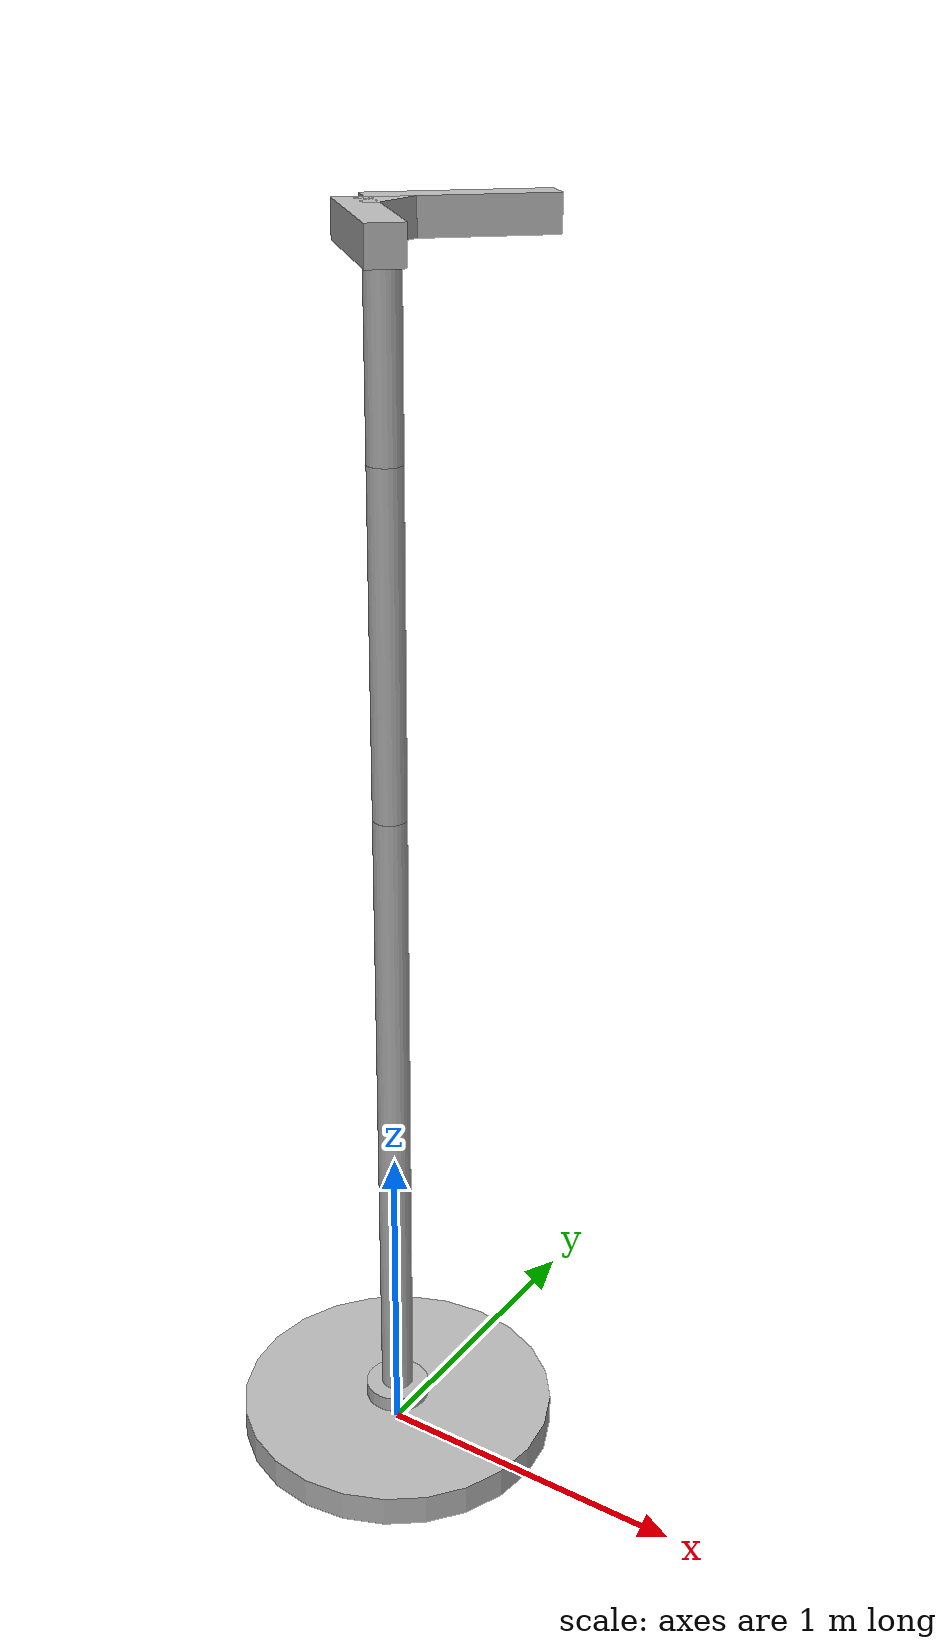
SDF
<?xml version='1.0'?>
<sdf version='1.4'>
    <model name="my_robot">
        <static>false</static>
        <self_collide>1</self_collide>
        <link name='chassis'>
            <pose>0 0 .05 0 0 0</pose>
            <inertial>
                <mass> 72</mass>
            </inertial>
            <collision name='collision'>
                <geometry>
                    <cylinder>
                        <radius>.5</radius>
                        <length>.1</length>
                    </cylinder>
                </geometry>
            </collision>
            <visual name='visual'>
                <geometry>
                    <cylinder>
                        <radius>.5</radius>
                        <length>.1</length>
                    </cylinder>
                </geometry>
            </visual>
        </link>
        <link name='arm1'>
            <pose>0 0 .125 0 0 0</pose>
            <gravity>0</gravity>

            <collision name='collision'>
                <geometry>
                    <cylinder>
                        <radius>.1</radius>
                        <length>.05</length>
                    </cylinder>
                </geometry>
            </collision>

            <visual name='visual'>
                <geometry>
                    <cylinder>
                        <radius>.1</radius>
                        <length>.05</length>
                    </cylinder>
                </geometry>
            </visual>
        </link>
        <link name='arm2'>
            <pose>0 0 1.15 0 0 0</pose>

            <collision name='collision'>
                <geometry>
                    <cylinder>
                        <radius>.05</radius>
                        <length>2.0</length>
                    </cylinder>
                </geometry>
            </collision>

            <visual name='visual'>
                <geometry>
                    <cylinder>
                        <radius>.05</radius>
                        <length>2.0</length>
                    </cylinder>
                </geometry>
            </visual>
        </link>
        <link name='arm3'>
            <pose>0 0 2.65 0 0 0</pose>

            <collision name='collision'>
                <geometry>
                    <cylinder>
                        <radius>.05</radius>
                        <length>1.0</length>
                    </cylinder>
                </geometry>
            </collision>

            <visual name='visual'>
                <geometry>
                    <cylinder>
                        <radius>.05</radius>
                        <length>1.0</length>
                    </cylinder>
                </geometry>
            </visual>
        </link>
        <link name='arm4'>
            <pose>0 0 3.4 0 0 0</pose>

            <collision name='collision'>
                <geometry>
                    <cylinder>
                        <radius>.05</radius>
                        <length>0.5</length>
                    </cylinder>
                </geometry>
            </collision>

            <visual name='visual'>
                <geometry>
                    <cylinder>
                        <radius>.05</radius>
                        <length>0.5</length>
                    </cylinder>
                </geometry>
            </visual>
        </link>
        <link name='arm5'>
            <pose>0 0 3.675 0 0 0</pose>

            <collision name='collision'>
                <geometry>
                    <cylinder>
                        <radius>.05</radius>
                        <length>0.05</length>
                    </cylinder>
                </geometry>
            </collision>

            <visual name='visual'>
                <geometry>
                    <cylinder>
                        <radius>.05</radius>
                        <length>0.05</length>
                    </cylinder>
                </geometry>
            </visual>
        </link>

        <link name="palm">
            <pose>0.0 0.0 3.75 0 0 0</pose>
            <inertial>
                <inertia>
                    <ixx>0.01</ixx>
                    <ixy>0</ixy>
                    <ixz>0</ixz>
                    <iyy>0.01</iyy>
                    <iyz>0</iyz>
                    <izz>0.01</izz>
                </inertia>
                <mass>0.5</mass>
            </inertial>
            <collision name="collision">
                <geometry>
                    <box>
                        <size>0.1 0.2 0.1</size>
                    </box>
                </geometry>
            </collision>
            <visual name="visual">
                <geometry>
                    <box>
                        <size>0.1 0.2 0.1</size>
                    </box>
                </geometry>
                <material>
                    <script>Gazebo/Red</script>
                </material>
            </visual>
        </link>
        <link name="left_finger">
            <pose>0.1 0.2 3.75 0 0 -0.78539</pose>
            <inertial>
                <inertia>
                    <ixx>0.01</ixx>
                    <ixy>0</ixy>
                    <ixz>0</ixz>
                    <iyy>0.01</iyy>
                    <iyz>0</iyz>
                    <izz>0.01</izz>
                </inertia>
                <mass>0.1</mass>
            </inertial>
            <collision name="collision">
                <geometry>
                    <box>
                        <size>0.1 0.3 0.1</size>
                    </box>
                </geometry>
            </collision>
            <visual name="visual">
                <geometry>
                    <box>
                        <size>0.1 0.5 0.1</size>
                    </box>
                </geometry>
                <material>
                    <script>Gazebo/Blue</script>
                </material>
            </visual>
        </link>
        <link name="right_finger">
            <pose>0.1 -0.2 3.75 0 0 .78539</pose>
            <inertial>
                <inertia>
                    <ixx>0.01</ixx>
                    <ixy>0</ixy>
                    <ixz>0</ixz>
                    <iyy>0.01</iyy>
                    <iyz>0</iyz>
                    <izz>0.01</izz>
                </inertia>
                <mass>0.1</mass>
            </inertial>
            <collision name="collision">
                <geometry>
                    <box>
                        <size>0.1 0.5 0.1</size>
                    </box>
                </geometry>
            </collision>
            <visual name="visual">
                <geometry>
                    <box>
                        <size>0.1 0.5 0.1</size>
                    </box>
                </geometry>
                <material>
                    <script>Gazebo/Green</script>
                </material>
            </visual>
        </link>
        <!-- joints-->
        <joint type="revolute" name="chasis_arm1_joint">
            <pose>0 0 -0.025 0 0 0</pose>
            <child>arm1</child>
            <parent>chassis</parent>
            <axis>
                <xyz>0 0 1</xyz>
            </axis>
        </joint>
         <joint type="revolute" name="arm1_arm2_joint">
            <pose>0 0 -1 0 0 0</pose>
            <child>arm2</child>
            <parent>arm1</parent>
            <axis>
                <xyz>1 0 0</xyz>
            </axis>
        </joint>
        <joint type="revolute" name="arm2_arm3_joint">
            <pose>0 0 -0.5 0 0 0</pose>
            <child>arm3</child>
            <parent>arm2</parent>
            <axis>
                <xyz>1 0 0</xyz>
            </axis>
        </joint>
        <joint type="revolute" name="arm3_arm4_joint">
            <pose>0 0 -0.25 0 0 0</pose>
            <child>arm4</child>
            <parent>arm3</parent>
            <axis>
                <xyz>1 0 0</xyz>
            </axis>
        </joint>
        <joint type="revolute" name="arm4_arm5_joint">
            <pose>0 0 -0.025 0 0 0</pose>
            <child>arm5</child>
            <parent>arm4</parent>
            <axis>
                <xyz>0 1 0</xyz>
            </axis>
        </joint>

        <joint name="palm_riser" type="revolute">
            <pose>0 0 -0.05 0 0 0</pose>
            <child>palm</child>
            <parent>arm5</parent>
            <axis>
                <xyz>0 0 1</xyz>
            </axis>
        </joint>

        <!-- new jointed -->
        <joint name="palm_left_finger" type="revolute">
            <pose>0 -0.15 0 0 0 0</pose>
            <child>left_finger</child>
            <parent>palm</parent>
            <axis>
                <limit>
                    <lower>-0.7</lower>
                    <upper>0.7</upper>
                </limit>
                <xyz>0 0 1</xyz>
            </axis>
        </joint>
        <joint name="palm_right_finger" type="revolute">
            <pose>0 0.15 0 0 0 0</pose>
            <child>right_finger</child>
            <parent>palm</parent>
            <axis>
                <limit>
                    <lower>-0.7</lower>
                    <upper>0.7</upper>
                </limit>
                <xyz>0 0 1</xyz>
            </axis>
        </joint>
        <plugin name="arm_control" filename="libarm_gazebo.so" />
    </model>
</sdf>
